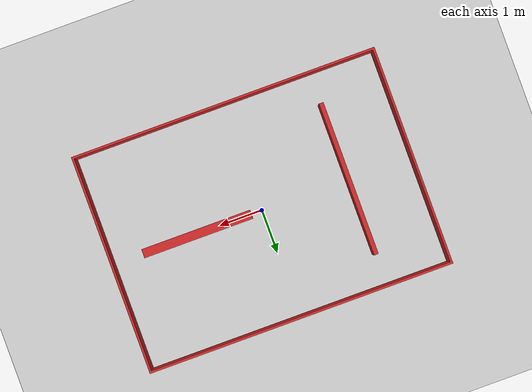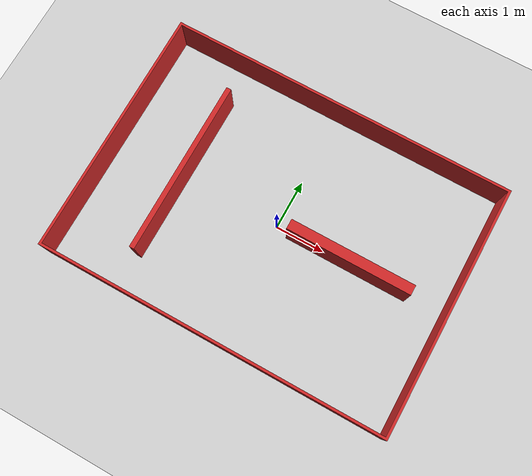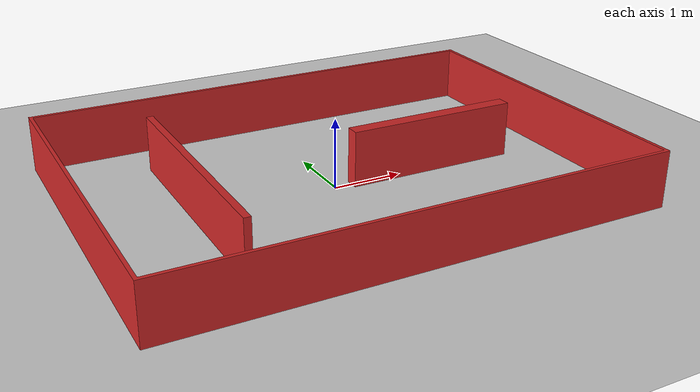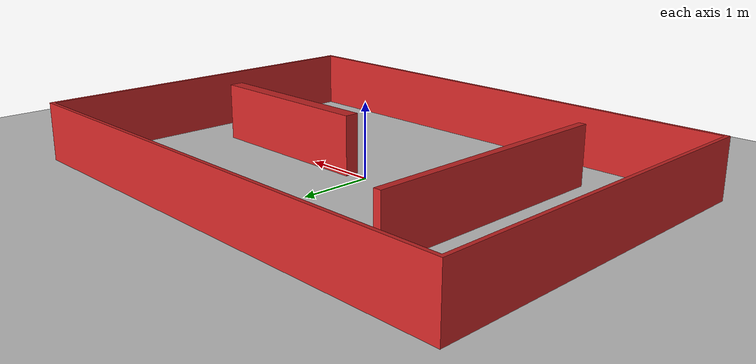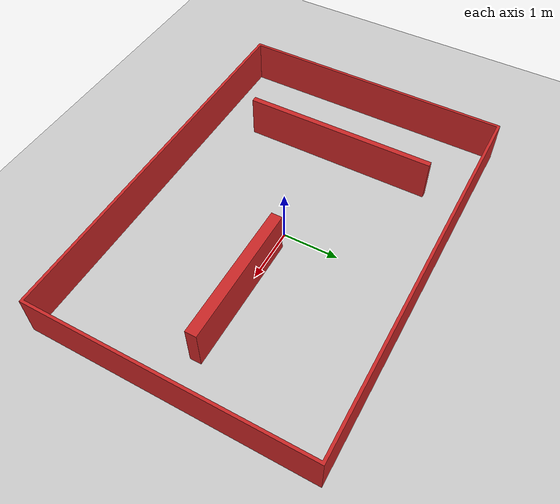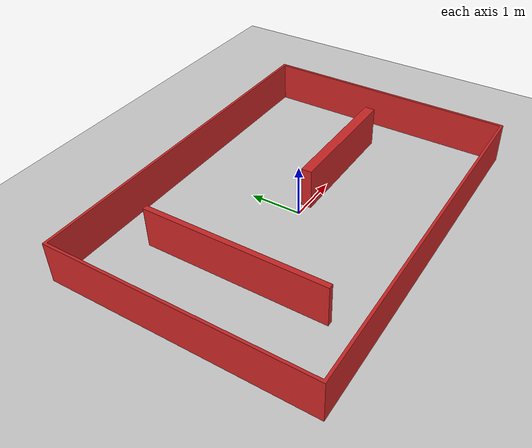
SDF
<sdf version='1.4'>
  <world name='default'>
    <!-- A global light source -->
    <include>
      <uri>model://sun</uri>
    </include>

    <!-- A ground plane -->
    <include>
      <uri>model://ground_plane</uri>
    </include>

    <physics type="ode">
      <real_time_update_rate>1000.0</real_time_update_rate>
      <max_step_size>0.005</max_step_size>
      <real_time_factor>1</real_time_factor>
      <ode>
        <solver>
          <type>quick</type>
          <iters>150</iters>
          <precon_iters>0</precon_iters>
          <sor>1.400000</sor>
          <use_dynamic_moi_rescaling>1</use_dynamic_moi_rescaling>
        </solver>
        <constraints>
          <cfm>0.00001</cfm>
          <erp>0.2</erp>
          <contact_max_correcting_vel>2000.000000</contact_max_correcting_vel>
          <contact_surface_layer>0.01000</contact_surface_layer>
        </constraints>
      </ode>
    </physics>

    <include>
      <uri>model://paredes</uri>
    </include>

    <scene>
      <ambient>0.4 0.4 0.4 1</ambient>
      <background>0.7 0.7 0.7 1</background>
      <shadows>true</shadows>
    </scene>

    <gui fullscreen='0'>
      <camera name='user_camera'>
        <pose>0.8 0.0 12.0 0 1.5708 0</pose>
        <view_controller>orbit</view_controller>
      </camera>
    </gui>
  </world>
</sdf>

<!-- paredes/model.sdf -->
<sdf version="1.6">
  <model name="paredes">
    <static>true</static> <!-- true si el modelo no se mueve -->
    <link name="base_link">
      <visual name="visual">
        <geometry>
          <mesh>
            <uri>model://paredes/meshes/paredes.stl</uri>
            <scale>1 1 1</scale>
          </mesh>
        </geometry>
        <material>
          <script>
            <uri>model://paredes/material/material.material</uri>
            <name>paredes_material</name>
          </script>
        </material>
      </visual>
      <collision name="collision">
        <geometry>
          <mesh>
            <uri>model://paredes/meshes/paredes.stl</uri>
            <scale>1 1 1</scale>
          </mesh>
        </geometry>
      </collision>
    </link>
  </model>
</sdf>
